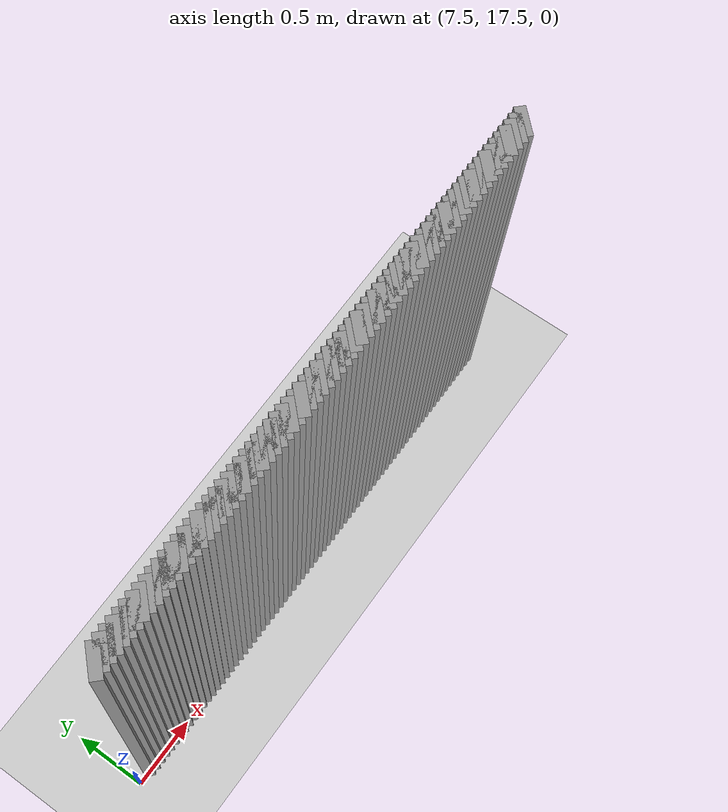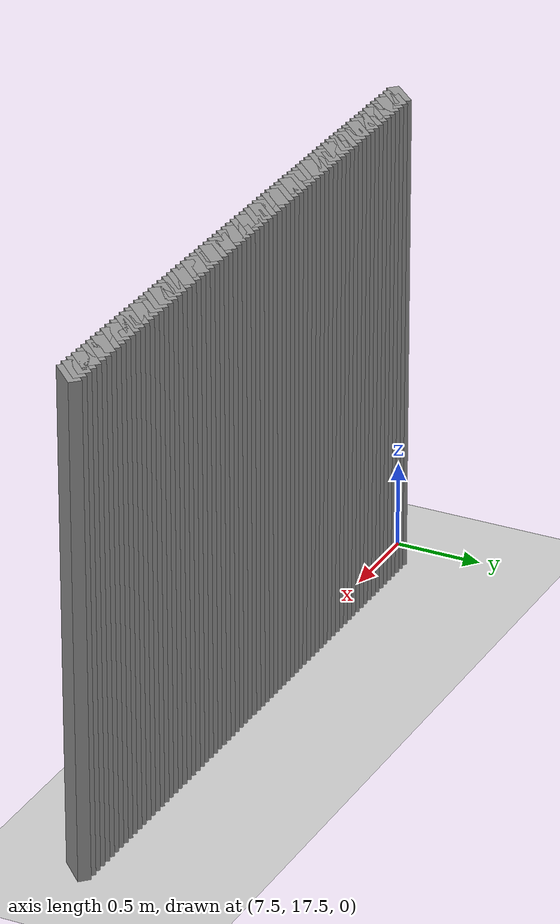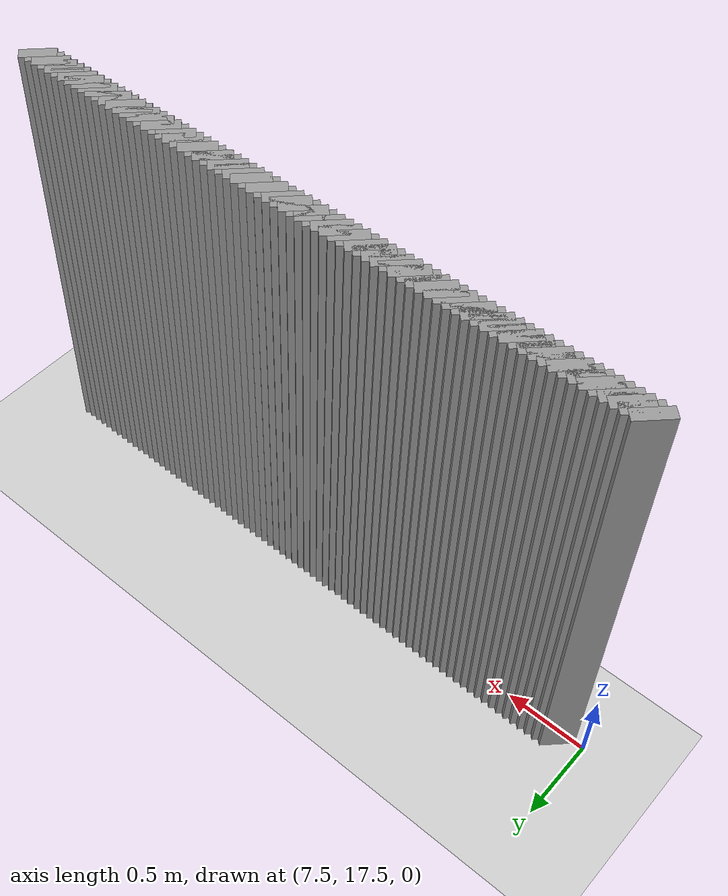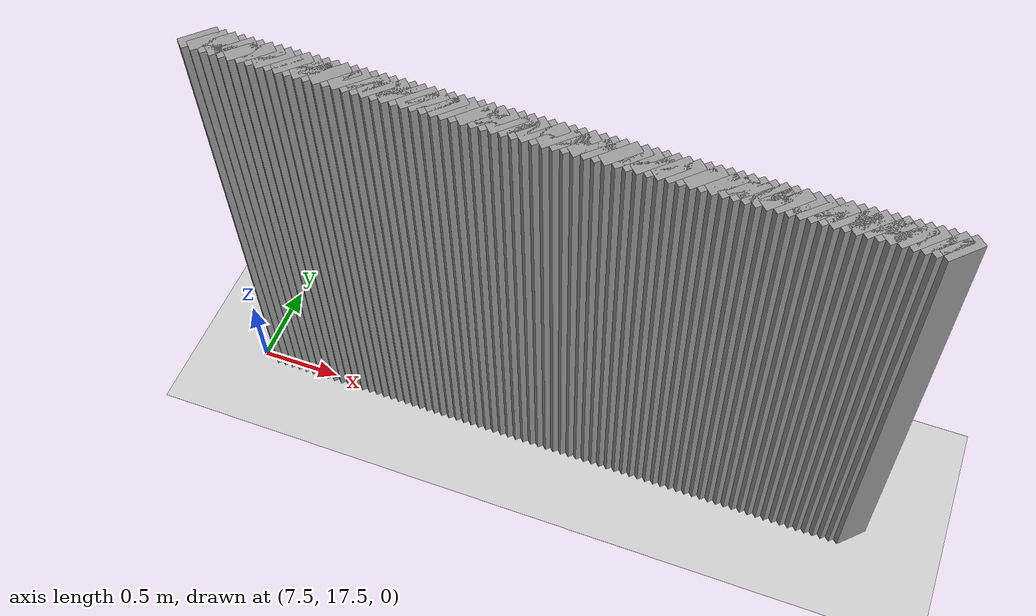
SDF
<sdf version="1.5">
 <world name="default">
  <include><uri>model://ground_plane</uri></include>
  <include><uri>model://sun</uri></include>
  <model name="grey_wall_75">
   <static>1</static>
   <link name="link">
    <pose>7.65 17.55  1.4 0 0 -0.7853981633974128</pose>
    <collision name="collision">
     <geometry><box><size>0.07071067811865325 .2  2.8</size></box></geometry>
    </collision>
    <visual name="visual">
     <cast_shadows>0</cast_shadows>
     <geometry><box><size>0.07071067811865325 .2  2.8</size></box></geometry>
     <material>
      <script>
       <uri>model://grey_wall/materials/scripts</uri>
       <uri>model://grey_wall/materials/textures</uri>
       <name>vrc/grey_wall</name>
      </script>
     </material>
    </visual>
   </link>
  </model>
  <model name="grey_wall_76">
   <static>1</static>
   <link name="link">
    <pose>7.7 17.55  1.4 0 0 -0.7853981633974128</pose>
    <collision name="collision">
     <geometry><box><size>0.07071067811865325 .2  2.8</size></box></geometry>
    </collision>
    <visual name="visual">
     <cast_shadows>0</cast_shadows>
     <geometry><box><size>0.07071067811865325 .2  2.8</size></box></geometry>
     <material>
      <script>
       <uri>model://grey_wall/materials/scripts</uri>
       <uri>model://grey_wall/materials/textures</uri>
       <name>vrc/grey_wall</name>
      </script>
     </material>
    </visual>
   </link>
  </model>
  <model name="grey_wall_77">
   <static>1</static>
   <link name="link">
    <pose>7.75 17.55  1.4 0 0 -0.7853981633974128</pose>
    <collision name="collision">
     <geometry><box><size>0.07071067811865325 .2  2.8</size></box></geometry>
    </collision>
    <visual name="visual">
     <cast_shadows>0</cast_shadows>
     <geometry><box><size>0.07071067811865325 .2  2.8</size></box></geometry>
     <material>
      <script>
       <uri>model://grey_wall/materials/scripts</uri>
       <uri>model://grey_wall/materials/textures</uri>
       <name>vrc/grey_wall</name>
      </script>
     </material>
    </visual>
   </link>
  </model>
  <model name="grey_wall_78">
   <static>1</static>
   <link name="link">
    <pose>7.800000000000001 17.55  1.4 0 0 -0.7853981633974128</pose>
    <collision name="collision">
     <geometry><box><size>0.07071067811865325 .2  2.8</size></box></geometry>
    </collision>
    <visual name="visual">
     <cast_shadows>0</cast_shadows>
     <geometry><box><size>0.07071067811865325 .2  2.8</size></box></geometry>
     <material>
      <script>
       <uri>model://grey_wall/materials/scripts</uri>
       <uri>model://grey_wall/materials/textures</uri>
       <name>vrc/grey_wall</name>
      </script>
     </material>
    </visual>
   </link>
  </model>
  <model name="grey_wall_79">
   <static>1</static>
   <link name="link">
    <pose>7.8500000000000005 17.55  1.4 0 0 -0.7853981633974128</pose>
    <collision name="collision">
     <geometry><box><size>0.07071067811865325 .2  2.8</size></box></geometry>
    </collision>
    <visual name="visual">
     <cast_shadows>0</cast_shadows>
     <geometry><box><size>0.07071067811865325 .2  2.8</size></box></geometry>
     <material>
      <script>
       <uri>model://grey_wall/materials/scripts</uri>
       <uri>model://grey_wall/materials/textures</uri>
       <name>vrc/grey_wall</name>
      </script>
     </material>
    </visual>
   </link>
  </model>
  <model name="grey_wall_80">
   <static>1</static>
   <link name="link">
    <pose>7.9 17.55  1.4 0 0 -0.7853981633974128</pose>
    <collision name="collision">
     <geometry><box><size>0.07071067811865325 .2  2.8</size></box></geometry>
    </collision>
    <visual name="visual">
     <cast_shadows>0</cast_shadows>
     <geometry><box><size>0.07071067811865325 .2  2.8</size></box></geometry>
     <material>
      <script>
       <uri>model://grey_wall/materials/scripts</uri>
       <uri>model://grey_wall/materials/textures</uri>
       <name>vrc/grey_wall</name>
      </script>
     </material>
    </visual>
   </link>
  </model>
  <model name="grey_wall_81">
   <static>1</static>
   <link name="link">
    <pose>7.95 17.55  1.4 0 0 -0.7853981633974128</pose>
    <collision name="collision">
     <geometry><box><size>0.07071067811865325 .2  2.8</size></box></geometry>
    </collision>
    <visual name="visual">
     <cast_shadows>0</cast_shadows>
     <geometry><box><size>0.07071067811865325 .2  2.8</size></box></geometry>
     <material>
      <script>
       <uri>model://grey_wall/materials/scripts</uri>
       <uri>model://grey_wall/materials/textures</uri>
       <name>vrc/grey_wall</name>
      </script>
     </material>
    </visual>
   </link>
  </model>
  <model name="grey_wall_82">
   <static>1</static>
   <link name="link">
    <pose>8.0 17.55  1.4 0 0 -0.7853981633974128</pose>
    <collision name="collision">
     <geometry><box><size>0.07071067811865325 .2  2.8</size></box></geometry>
    </collision>
    <visual name="visual">
     <cast_shadows>0</cast_shadows>
     <geometry><box><size>0.07071067811865325 .2  2.8</size></box></geometry>
     <material>
      <script>
       <uri>model://grey_wall/materials/scripts</uri>
       <uri>model://grey_wall/materials/textures</uri>
       <name>vrc/grey_wall</name>
      </script>
     </material>
    </visual>
   </link>
  </model>
  <model name="grey_wall_83">
   <static>1</static>
   <link name="link">
    <pose>8.05 17.55  1.4 0 0 -0.7853981633974128</pose>
    <collision name="collision">
     <geometry><box><size>0.07071067811865325 .2  2.8</size></box></geometry>
    </collision>
    <visual name="visual">
     <cast_shadows>0</cast_shadows>
     <geometry><box><size>0.07071067811865325 .2  2.8</size></box></geometry>
     <material>
      <script>
       <uri>model://grey_wall/materials/scripts</uri>
       <uri>model://grey_wall/materials/textures</uri>
       <name>vrc/grey_wall</name>
      </script>
     </material>
    </visual>
   </link>
  </model>
  <model name="grey_wall_84">
   <static>1</static>
   <link name="link">
    <pose>8.1 17.55  1.4 0 0 -0.7853981633974128</pose>
    <collision name="collision">
     <geometry><box><size>0.07071067811865325 .2  2.8</size></box></geometry>
    </collision>
    <visual name="visual">
     <cast_shadows>0</cast_shadows>
     <geometry><box><size>0.07071067811865325 .2  2.8</size></box></geometry>
     <material>
      <script>
       <uri>model://grey_wall/materials/scripts</uri>
       <uri>model://grey_wall/materials/textures</uri>
       <name>vrc/grey_wall</name>
      </script>
     </material>
    </visual>
   </link>
  </model>
  <model name="grey_wall_85">
   <static>1</static>
   <link name="link">
    <pose>8.15 17.55  1.4 0 0 -0.7853981633974128</pose>
    <collision name="collision">
     <geometry><box><size>0.07071067811865325 .2  2.8</size></box></geometry>
    </collision>
    <visual name="visual">
     <cast_shadows>0</cast_shadows>
     <geometry><box><size>0.07071067811865325 .2  2.8</size></box></geometry>
     <material>
      <script>
       <uri>model://grey_wall/materials/scripts</uri>
       <uri>model://grey_wall/materials/textures</uri>
       <name>vrc/grey_wall</name>
      </script>
     </material>
    </visual>
   </link>
  </model>
  <model name="grey_wall_86">
   <static>1</static>
   <link name="link">
    <pose>8.200000000000001 17.55  1.4 0 0 -0.7853981633974128</pose>
    <collision name="collision">
     <geometry><box><size>0.07071067811865325 .2  2.8</size></box></geometry>
    </collision>
    <visual name="visual">
     <cast_shadows>0</cast_shadows>
     <geometry><box><size>0.07071067811865325 .2  2.8</size></box></geometry>
     <material>
      <script>
       <uri>model://grey_wall/materials/scripts</uri>
       <uri>model://grey_wall/materials/textures</uri>
       <name>vrc/grey_wall</name>
      </script>
     </material>
    </visual>
   </link>
  </model>
  <model name="grey_wall_87">
   <static>1</static>
   <link name="link">
    <pose>8.25 17.55  1.4 0 0 -0.7853981633974128</pose>
    <collision name="collision">
     <geometry><box><size>0.07071067811865325 .2  2.8</size></box></geometry>
    </collision>
    <visual name="visual">
     <cast_shadows>0</cast_shadows>
     <geometry><box><size>0.07071067811865325 .2  2.8</size></box></geometry>
     <material>
      <script>
       <uri>model://grey_wall/materials/scripts</uri>
       <uri>model://grey_wall/materials/textures</uri>
       <name>vrc/grey_wall</name>
      </script>
     </material>
    </visual>
   </link>
  </model>
  <model name="grey_wall_88">
   <static>1</static>
   <link name="link">
    <pose>8.3 17.55  1.4 0 0 -0.7853981633974128</pose>
    <collision name="collision">
     <geometry><box><size>0.07071067811865325 .2  2.8</size></box></geometry>
    </collision>
    <visual name="visual">
     <cast_shadows>0</cast_shadows>
     <geometry><box><size>0.07071067811865325 .2  2.8</size></box></geometry>
     <material>
      <script>
       <uri>model://grey_wall/materials/scripts</uri>
       <uri>model://grey_wall/materials/textures</uri>
       <name>vrc/grey_wall</name>
      </script>
     </material>
    </visual>
   </link>
  </model>
  <model name="grey_wall_89">
   <static>1</static>
   <link name="link">
    <pose>8.35 17.55  1.4 0 0 -0.7853981633974128</pose>
    <collision name="collision">
     <geometry><box><size>0.07071067811865325 .2  2.8</size></box></geometry>
    </collision>
    <visual name="visual">
     <cast_shadows>0</cast_shadows>
     <geometry><box><size>0.07071067811865325 .2  2.8</size></box></geometry>
     <material>
      <script>
       <uri>model://grey_wall/materials/scripts</uri>
       <uri>model://grey_wall/materials/textures</uri>
       <name>vrc/grey_wall</name>
      </script>
     </material>
    </visual>
   </link>
  </model>
  <model name="grey_wall_90">
   <static>1</static>
   <link name="link">
    <pose>8.4 17.55  1.4 0 0 -0.7853981633974128</pose>
    <collision name="collision">
     <geometry><box><size>0.07071067811865325 .2  2.8</size></box></geometry>
    </collision>
    <visual name="visual">
     <cast_shadows>0</cast_shadows>
     <geometry><box><size>0.07071067811865325 .2  2.8</size></box></geometry>
     <material>
      <script>
       <uri>model://grey_wall/materials/scripts</uri>
       <uri>model://grey_wall/materials/textures</uri>
       <name>vrc/grey_wall</name>
      </script>
     </material>
    </visual>
   </link>
  </model>
  <model name="grey_wall_91">
   <static>1</static>
   <link name="link">
    <pose>8.450000000000001 17.55  1.4 0 0 -0.7853981633974128</pose>
    <collision name="collision">
     <geometry><box><size>0.07071067811865325 .2  2.8</size></box></geometry>
    </collision>
    <visual name="visual">
     <cast_shadows>0</cast_shadows>
     <geometry><box><size>0.07071067811865325 .2  2.8</size></box></geometry>
     <material>
      <script>
       <uri>model://grey_wall/materials/scripts</uri>
       <uri>model://grey_wall/materials/textures</uri>
       <name>vrc/grey_wall</name>
      </script>
     </material>
    </visual>
   </link>
  </model>
  <model name="grey_wall_92">
   <static>1</static>
   <link name="link">
    <pose>8.5 17.55  1.4 0 0 -0.7853981633974128</pose>
    <collision name="collision">
     <geometry><box><size>0.07071067811865325 .2  2.8</size></box></geometry>
    </collision>
    <visual name="visual">
     <cast_shadows>0</cast_shadows>
     <geometry><box><size>0.07071067811865325 .2  2.8</size></box></geometry>
     <material>
      <script>
       <uri>model://grey_wall/materials/scripts</uri>
       <uri>model://grey_wall/materials/textures</uri>
       <name>vrc/grey_wall</name>
      </script>
     </material>
    </visual>
   </link>
  </model>
  <model name="grey_wall_93">
   <static>1</static>
   <link name="link">
    <pose>8.55 17.55  1.4 0 0 -0.7853981633974128</pose>
    <collision name="collision">
     <geometry><box><size>0.07071067811865325 .2  2.8</size></box></geometry>
    </collision>
    <visual name="visual">
     <cast_shadows>0</cast_shadows>
     <geometry><box><size>0.07071067811865325 .2  2.8</size></box></geometry>
     <material>
      <script>
       <uri>model://grey_wall/materials/scripts</uri>
       <uri>model://grey_wall/materials/textures</uri>
       <name>vrc/grey_wall</name>
      </script>
     </material>
    </visual>
   </link>
  </model>
  <model name="grey_wall_94">
   <static>1</static>
   <link name="link">
    <pose>8.6 17.55  1.4 0 0 -0.7853981633974128</pose>
    <collision name="collision">
     <geometry><box><size>0.07071067811865325 .2  2.8</size></box></geometry>
    </collision>
    <visual name="visual">
     <cast_shadows>0</cast_shadows>
     <geometry><box><size>0.07071067811865325 .2  2.8</size></box></geometry>
     <material>
      <script>
       <uri>model://grey_wall/materials/scripts</uri>
       <uri>model://grey_wall/materials/textures</uri>
       <name>vrc/grey_wall</name>
      </script>
     </material>
    </visual>
   </link>
  </model>
  <model name="grey_wall_95">
   <static>1</static>
   <link name="link">
    <pose>8.65 17.55  1.4 0 0 -0.7853981633974128</pose>
    <collision name="collision">
     <geometry><box><size>0.07071067811865325 .2  2.8</size></box></geometry>
    </collision>
    <visual name="visual">
     <cast_shadows>0</cast_shadows>
     <geometry><box><size>0.07071067811865325 .2  2.8</size></box></geometry>
     <material>
      <script>
       <uri>model://grey_wall/materials/scripts</uri>
       <uri>model://grey_wall/materials/textures</uri>
       <name>vrc/grey_wall</name>
      </script>
     </material>
    </visual>
   </link>
  </model>
  <model name="grey_wall_96">
   <static>1</static>
   <link name="link">
    <pose>8.700000000000001 17.55  1.4 0 0 -0.7853981633974128</pose>
    <collision name="collision">
     <geometry><box><size>0.07071067811865325 .2  2.8</size></box></geometry>
    </collision>
    <visual name="visual">
     <cast_shadows>0</cast_shadows>
     <geometry><box><size>0.07071067811865325 .2  2.8</size></box></geometry>
     <material>
      <script>
       <uri>model://grey_wall/materials/scripts</uri>
       <uri>model://grey_wall/materials/textures</uri>
       <name>vrc/grey_wall</name>
      </script>
     </material>
    </visual>
   </link>
  </model>
  <model name="grey_wall_97">
   <static>1</static>
   <link name="link">
    <pose>8.75 17.55  1.4 0 0 -0.7853981633974128</pose>
    <collision name="collision">
     <geometry><box><size>0.07071067811865325 .2  2.8</size></box></geometry>
    </collision>
    <visual name="visual">
     <cast_shadows>0</cast_shadows>
     <geometry><box><size>0.07071067811865325 .2  2.8</size></box></geometry>
     <material>
      <script>
       <uri>model://grey_wall/materials/scripts</uri>
       <uri>model://grey_wall/materials/textures</uri>
       <name>vrc/grey_wall</name>
      </script>
     </material>
    </visual>
   </link>
  </model>
  <model name="grey_wall_98">
   <static>1</static>
   <link name="link">
    <pose>8.8 17.55  1.4 0 0 -0.7853981633974128</pose>
    <collision name="collision">
     <geometry><box><size>0.07071067811865325 .2  2.8</size></box></geometry>
    </collision>
    <visual name="visual">
     <cast_shadows>0</cast_shadows>
     <geometry><box><size>0.07071067811865325 .2  2.8</size></box></geometry>
     <material>
      <script>
       <uri>model://grey_wall/materials/scripts</uri>
       <uri>model://grey_wall/materials/textures</uri>
       <name>vrc/grey_wall</name>
      </script>
     </material>
    </visual>
   </link>
  </model>
  <model name="grey_wall_99">
   <static>1</static>
   <link name="link">
    <pose>8.85 17.55  1.4 0 0 -0.7853981633974128</pose>
    <collision name="collision">
     <geometry><box><size>0.07071067811865325 .2  2.8</size></box></geometry>
    </collision>
    <visual name="visual">
     <cast_shadows>0</cast_shadows>
     <geometry><box><size>0.07071067811865325 .2  2.8</size></box></geometry>
     <material>
      <script>
       <uri>model://grey_wall/materials/scripts</uri>
       <uri>model://grey_wall/materials/textures</uri>
       <name>vrc/grey_wall</name>
      </script>
     </material>
    </visual>
   </link>
  </model>
  <model name="grey_wall_100">
   <static>1</static>
   <link name="link">
    <pose>8.9 17.55  1.4 0 0 -0.7853981633974128</pose>
    <collision name="collision">
     <geometry><box><size>0.07071067811865325 .2  2.8</size></box></geometry>
    </collision>
    <visual name="visual">
     <cast_shadows>0</cast_shadows>
     <geometry><box><size>0.07071067811865325 .2  2.8</size></box></geometry>
     <material>
      <script>
       <uri>model://grey_wall/materials/scripts</uri>
       <uri>model://grey_wall/materials/textures</uri>
       <name>vrc/grey_wall</name>
      </script>
     </material>
    </visual>
   </link>
  </model>
  <model name="grey_wall_101">
   <static>1</static>
   <link name="link">
    <pose>8.950000000000001 17.55  1.4 0 0 -0.7853981633974128</pose>
    <collision name="collision">
     <geometry><box><size>0.07071067811865325 .2  2.8</size></box></geometry>
    </collision>
    <visual name="visual">
     <cast_shadows>0</cast_shadows>
     <geometry><box><size>0.07071067811865325 .2  2.8</size></box></geometry>
     <material>
      <script>
       <uri>model://grey_wall/materials/scripts</uri>
       <uri>model://grey_wall/materials/textures</uri>
       <name>vrc/grey_wall</name>
      </script>
     </material>
    </visual>
   </link>
  </model>
  <model name="grey_wall_102">
   <static>1</static>
   <link name="link">
    <pose>9.0 17.55  1.4 0 0 -0.7853981633974128</pose>
    <collision name="collision">
     <geometry><box><size>0.07071067811865325 .2  2.8</size></box></geometry>
    </collision>
    <visual name="visual">
     <cast_shadows>0</cast_shadows>
     <geometry><box><size>0.07071067811865325 .2  2.8</size></box></geometry>
     <material>
      <script>
       <uri>model://grey_wall/materials/scripts</uri>
       <uri>model://grey_wall/materials/textures</uri>
       <name>vrc/grey_wall</name>
      </script>
     </material>
    </visual>
   </link>
  </model>
  <model name="grey_wall_103">
   <static>1</static>
   <link name="link">
    <pose>9.05 17.55  1.4 0 0 -0.7853981633974128</pose>
    <collision name="collision">
     <geometry><box><size>0.07071067811865325 .2  2.8</size></box></geometry>
    </collision>
    <visual name="visual">
     <cast_shadows>0</cast_shadows>
     <geometry><box><size>0.07071067811865325 .2  2.8</size></box></geometry>
     <material>
      <script>
       <uri>model://grey_wall/materials/scripts</uri>
       <uri>model://grey_wall/materials/textures</uri>
       <name>vrc/grey_wall</name>
      </script>
     </material>
    </visual>
   </link>
  </model>
  <model name="grey_wall_104">
   <static>1</static>
   <link name="link">
    <pose>9.1 17.55  1.4 0 0 -0.7853981633974128</pose>
    <collision name="collision">
     <geometry><box><size>0.07071067811865325 .2  2.8</size></box></geometry>
    </collision>
    <visual name="visual">
     <cast_shadows>0</cast_shadows>
     <geometry><box><size>0.07071067811865325 .2  2.8</size></box></geometry>
     <material>
      <script>
       <uri>model://grey_wall/materials/scripts</uri>
       <uri>model://grey_wall/materials/textures</uri>
       <name>vrc/grey_wall</name>
      </script>
     </material>
    </visual>
   </link>
  </model>
  <model name="grey_wall_105">
   <static>1</static>
   <link name="link">
    <pose>9.15 17.55  1.4 0 0 -0.7853981633974128</pose>
    <collision name="collision">
     <geometry><box><size>0.07071067811865325 .2  2.8</size></box></geometry>
    </collision>
    <visual name="visual">
     <cast_shadows>0</cast_shadows>
     <geometry><box><size>0.07071067811865325 .2  2.8</size></box></geometry>
     <material>
      <script>
       <uri>model://grey_wall/materials/scripts</uri>
       <uri>model://grey_wall/materials/textures</uri>
       <name>vrc/grey_wall</name>
      </script>
     </material>
    </visual>
   </link>
  </model>
  <model name="grey_wall_106">
   <static>1</static>
   <link name="link">
    <pose>9.200000000000001 17.55  1.4 0 0 -0.7853981633974128</pose>
    <collision name="collision">
     <geometry><box><size>0.07071067811865325 .2  2.8</size></box></geometry>
    </collision>
    <visual name="visual">
     <cast_shadows>0</cast_shadows>
     <geometry><box><size>0.07071067811865325 .2  2.8</size></box></geometry>
     <material>
      <script>
       <uri>model://grey_wall/materials/scripts</uri>
       <uri>model://grey_wall/materials/textures</uri>
       <name>vrc/grey_wall</name>
      </script>
     </material>
    </visual>
   </link>
  </model>
  <model name="grey_wall_107">
   <static>1</static>
   <link name="link">
    <pose>9.25 17.55  1.4 0 0 -0.7853981633974128</pose>
    <collision name="collision">
     <geometry><box><size>0.07071067811865325 .2  2.8</size></box></geometry>
    </collision>
    <visual name="visual">
     <cast_shadows>0</cast_shadows>
     <geometry><box><size>0.07071067811865325 .2  2.8</size></box></geometry>
     <material>
      <script>
       <uri>model://grey_wall/materials/scripts</uri>
       <uri>model://grey_wall/materials/textures</uri>
       <name>vrc/grey_wall</name>
      </script>
     </material>
    </visual>
   </link>
  </model>
  <model name="grey_wall_108">
   <static>1</static>
   <link name="link">
    <pose>9.3 17.55  1.4 0 0 -0.7853981633974128</pose>
    <collision name="collision">
     <geometry><box><size>0.07071067811865325 .2  2.8</size></box></geometry>
    </collision>
    <visual name="visual">
     <cast_shadows>0</cast_shadows>
     <geometry><box><size>0.07071067811865325 .2  2.8</size></box></geometry>
     <material>
      <script>
       <uri>model://grey_wall/materials/scripts</uri>
       <uri>model://grey_wall/materials/textures</uri>
       <name>vrc/grey_wall</name>
      </script>
     </material>
    </visual>
   </link>
  </model>
  <model name="grey_wall_109">
   <static>1</static>
   <link name="link">
    <pose>9.35 17.55  1.4 0 0 -0.7853981633974128</pose>
    <collision name="collision">
     <geometry><box><size>0.07071067811865325 .2  2.8</size></box></geometry>
    </collision>
    <visual name="visual">
     <cast_shadows>0</cast_shadows>
     <geometry><box><size>0.07071067811865325 .2  2.8</size></box></geometry>
     <material>
      <script>
       <uri>model://grey_wall/materials/scripts</uri>
       <uri>model://grey_wall/materials/textures</uri>
       <name>vrc/grey_wall</name>
      </script>
     </material>
    </visual>
   </link>
  </model>
  <model name="grey_wall_110">
   <static>1</static>
   <link name="link">
    <pose>9.4 17.55  1.4 0 0 -0.7853981633974128</pose>
    <collision name="collision">
     <geometry><box><size>0.07071067811865325 .2  2.8</size></box></geometry>
    </collision>
    <visual name="visual">
     <cast_shadows>0</cast_shadows>
     <geometry><box><size>0.07071067811865325 .2  2.8</size></box></geometry>
     <material>
      <script>
       <uri>model://grey_wall/materials/scripts</uri>
       <uri>model://grey_wall/materials/textures</uri>
       <name>vrc/grey_wall</name>
      </script>
     </material>
    </visual>
   </link>
  </model>
  <model name="grey_wall_111">
   <static>1</static>
   <link name="link">
    <pose>9.450000000000001 17.55  1.4 0 0 -0.7853981633974128</pose>
    <collision name="collision">
     <geometry><box><size>0.07071067811865325 .2  2.8</size></box></geometry>
    </collision>
    <visual name="visual">
     <cast_shadows>0</cast_shadows>
     <geometry><box><size>0.07071067811865325 .2  2.8</size></box></geometry>
     <material>
      <script>
       <uri>model://grey_wall/materials/scripts</uri>
       <uri>model://grey_wall/materials/textures</uri>
       <name>vrc/grey_wall</name>
      </script>
     </material>
    </visual>
   </link>
  </model>
  <model name="grey_wall_112">
   <static>1</static>
   <link name="link">
    <pose>9.5 17.55  1.4 0 0 -0.7853981633974128</pose>
    <collision name="collision">
     <geometry><box><size>0.07071067811865325 .2  2.8</size></box></geometry>
    </collision>
    <visual name="visual">
     <cast_shadows>0</cast_shadows>
     <geometry><box><size>0.07071067811865325 .2  2.8</size></box></geometry>
     <material>
      <script>
       <uri>model://grey_wall/materials/scripts</uri>
       <uri>model://grey_wall/materials/textures</uri>
       <name>vrc/grey_wall</name>
      </script>
     </material>
    </visual>
   </link>
  </model>
  <model name="grey_wall_113">
   <static>1</static>
   <link name="link">
    <pose>9.55 17.55  1.4 0 0 -0.7853981633974128</pose>
    <collision name="collision">
     <geometry><box><size>0.07071067811865325 .2  2.8</size></box></geometry>
    </collision>
    <visual name="visual">
     <cast_shadows>0</cast_shadows>
     <geometry><box><size>0.07071067811865325 .2  2.8</size></box></geometry>
     <material>
      <script>
       <uri>model://grey_wall/materials/scripts</uri>
       <uri>model://grey_wall/materials/textures</uri>
       <name>vrc/grey_wall</name>
      </script>
     </material>
    </visual>
   </link>
  </model>
  <model name="grey_wall_114">
   <static>1</static>
   <link name="link">
    <pose>9.600000000000001 17.55  1.4 0 0 -0.7853981633974128</pose>
    <collision name="collision">
     <geometry><box><size>0.07071067811865325 .2  2.8</size></box></geometry>
    </collision>
    <visual name="visual">
     <cast_shadows>0</cast_shadows>
     <geometry><box><size>0.07071067811865325 .2  2.8</size></box></geometry>
     <material>
      <script>
       <uri>model://grey_wall/materials/scripts</uri>
       <uri>model://grey_wall/materials/textures</uri>
       <name>vrc/grey_wall</name>
      </script>
     </material>
    </visual>
   </link>
  </model>
  <model name="grey_wall_115">
   <static>1</static>
   <link name="link">
    <pose>9.65 17.55  1.4 0 0 -0.7853981633974128</pose>
    <collision name="collision">
     <geometry><box><size>0.07071067811865325 .2  2.8</size></box></geometry>
    </collision>
    <visual name="visual">
     <cast_shadows>0</cast_shadows>
     <geometry><box><size>0.07071067811865325 .2  2.8</size></box></geometry>
     <material>
      <script>
       <uri>model://grey_wall/materials/scripts</uri>
       <uri>model://grey_wall/materials/textures</uri>
       <name>vrc/grey_wall</name>
      </script>
     </material>
    </visual>
   </link>
  </model>
  <model name="grey_wall_116">
   <static>1</static>
   <link name="link">
    <pose>9.700000000000001 17.55  1.4 0 0 -0.7853981633974128</pose>
    <collision name="collision">
     <geometry><box><size>0.07071067811865325 .2  2.8</size></box></geometry>
    </collision>
    <visual name="visual">
     <cast_shadows>0</cast_shadows>
     <geometry><box><size>0.07071067811865325 .2  2.8</size></box></geometry>
     <material>
      <script>
       <uri>model://grey_wall/materials/scripts</uri>
       <uri>model://grey_wall/materials/textures</uri>
       <name>vrc/grey_wall</name>
      </script>
     </material>
    </visual>
   </link>
  </model>
  <model name="grey_wall_117">
   <static>1</static>
   <link name="link">
    <pose>9.75 17.55  1.4 0 0 -0.7853981633974128</pose>
    <collision name="collision">
     <geometry><box><size>0.07071067811865325 .2  2.8</size></box></geometry>
    </collision>
    <visual name="visual">
     <cast_shadows>0</cast_shadows>
     <geometry><box><size>0.07071067811865325 .2  2.8</size></box></geometry>
     <material>
      <script>
       <uri>model://grey_wall/materials/scripts</uri>
       <uri>model://grey_wall/materials/textures</uri>
       <name>vrc/grey_wall</name>
      </script>
     </material>
    </visual>
   </link>
  </model>
  <model name="grey_wall_118">
   <static>1</static>
   <link name="link">
    <pose>9.8 17.55  1.4 0 0 -0.7853981633974128</pose>
    <collision name="collision">
     <geometry><box><size>0.07071067811865325 .2  2.8</size></box></geometry>
    </collision>
    <visual name="visual">
     <cast_shadows>0</cast_shadows>
     <geometry><box><size>0.07071067811865325 .2  2.8</size></box></geometry>
     <material>
      <script>
       <uri>model://grey_wall/materials/scripts</uri>
       <uri>model://grey_wall/materials/textures</uri>
       <name>vrc/grey_wall</name>
      </script>
     </material>
    </visual>
   </link>
  </model>
  <model name="grey_wall_119">
   <static>1</static>
   <link name="link">
    <pose>9.850000000000001 17.55  1.4 0 0 -0.7853981633974128</pose>
    <collision name="collision">
     <geometry><box><size>0.07071067811865325 .2  2.8</size></box></geometry>
    </collision>
    <visual name="visual">
     <cast_shadows>0</cast_shadows>
     <geometry><box><size>0.07071067811865325 .2  2.8</size></box></geometry>
     <material>
      <script>
       <uri>model://grey_wall/materials/scripts</uri>
       <uri>model://grey_wall/materials/textures</uri>
       <name>vrc/grey_wall</name>
      </script>
     </material>
    </visual>
   </link>
  </model>
  <model name="grey_wall_120">
   <static>1</static>
   <link name="link">
    <pose>9.9 17.55  1.4 0 0 -0.7853981633974128</pose>
    <collision name="collision">
     <geometry><box><size>0.07071067811865325 .2  2.8</size></box></geometry>
    </collision>
    <visual name="visual">
     <cast_shadows>0</cast_shadows>
     <geometry><box><size>0.07071067811865325 .2  2.8</size></box></geometry>
     <material>
      <script>
       <uri>model://grey_wall/materials/scripts</uri>
       <uri>model://grey_wall/materials/textures</uri>
       <name>vrc/grey_wall</name>
      </script>
     </material>
    </visual>
   </link>
  </model>
  <model name="grey_wall_121">
   <static>1</static>
   <link name="link">
    <pose>9.950000000000001 17.55  1.4 0 0 -0.7853981633974128</pose>
    <collision name="collision">
     <geometry><box><size>0.07071067811865325 .2  2.8</size></box></geometry>
    </collision>
    <visual name="visual">
     <cast_shadows>0</cast_shadows>
     <geometry><box><size>0.07071067811865325 .2  2.8</size></box></geometry>
     <material>
      <script>
       <uri>model://grey_wall/materials/scripts</uri>
       <uri>model://grey_wall/materials/textures</uri>
       <name>vrc/grey_wall</name>
      </script>
     </material>
    </visual>
   </link>
  </model>
  <model name="grey_wall_122">
   <static>1</static>
   <link name="link">
    <pose>10.0 17.55  1.4 0 0 -0.7853981633974128</pose>
    <collision name="collision">
     <geometry><box><size>0.07071067811865325 .2  2.8</size></box></geometry>
    </collision>
    <visual name="visual">
     <cast_shadows>0</cast_shadows>
     <geometry><box><size>0.07071067811865325 .2  2.8</size></box></geometry>
     <material>
      <script>
       <uri>model://grey_wall/materials/scripts</uri>
       <uri>model://grey_wall/materials/textures</uri>
       <name>vrc/grey_wall</name>
      </script>
     </material>
    </visual>
   </link>
  </model>
  <model name="grey_wall_123">
   <static>1</static>
   <link name="link">
    <pose>10.05 17.55  1.4 0 0 -0.7853981633974128</pose>
    <collision name="collision">
     <geometry><box><size>0.07071067811865325 .2  2.8</size></box></geometry>
    </collision>
    <visual name="visual">
     <cast_shadows>0</cast_shadows>
     <geometry><box><size>0.07071067811865325 .2  2.8</size></box></geometry>
     <material>
      <script>
       <uri>model://grey_wall/materials/scripts</uri>
       <uri>model://grey_wall/materials/textures</uri>
       <name>vrc/grey_wall</name>
      </script>
     </material>
    </visual>
   </link>
  </model>
  <model name="grey_wall_124">
   <static>1</static>
   <link name="link">
    <pose>10.100000000000001 17.55  1.4 0 0 -0.7853981633974128</pose>
    <collision name="collision">
     <geometry><box><size>0.07071067811865325 .2  2.8</size></box></geometry>
    </collision>
    <visual name="visual">
     <cast_shadows>0</cast_shadows>
     <geometry><box><size>0.07071067811865325 .2  2.8</size></box></geometry>
     <material>
      <script>
       <uri>model://grey_wall/materials/scripts</uri>
       <uri>model://grey_wall/materials/textures</uri>
       <name>vrc/grey_wall</name>
      </script>
     </material>
    </visual>
   </link>
  </model>
  <model name="grey_wall_125">
   <static>1</static>
   <link name="link">
    <pose>10.15 17.55  1.4 0 0 -0.7853981633974128</pose>
    <collision name="collision">
     <geometry><box><size>0.07071067811865325 .2  2.8</size></box></geometry>
    </collision>
    <visual name="visual">
     <cast_shadows>0</cast_shadows>
     <geometry><box><size>0.07071067811865325 .2  2.8</size></box></geometry>
     <material>
      <script>
       <uri>model://grey_wall/materials/scripts</uri>
       <uri>model://grey_wall/materials/textures</uri>
       <name>vrc/grey_wall</name>
      </script>
     </material>
    </visual>
   </link>
  </model>
  <model name="grey_wall_126">
   <static>1</static>
   <link name="link">
    <pose>10.200000000000001 17.55  1.4 0 0 -0.7853981633974128</pose>
    <collision name="collision">
     <geometry><box><size>0.07071067811865325 .2  2.8</size></box></geometry>
    </collision>
    <visual name="visual">
     <cast_shadows>0</cast_shadows>
     <geometry><box><size>0.07071067811865325 .2  2.8</size></box></geometry>
     <material>
      <script>
       <uri>model://grey_wall/materials/scripts</uri>
       <uri>model://grey_wall/materials/textures</uri>
       <name>vrc/grey_wall</name>
      </script>
     </material>
    </visual>
   </link>
  </model>
  <model name="grey_wall_127">
   <static>1</static>
   <link name="link">
    <pose>10.25 17.55  1.4 0 0 -0.7853981633974128</pose>
    <collision name="collision">
     <geometry><box><size>0.07071067811865325 .2  2.8</size></box></geometry>
    </collision>
    <visual name="visual">
     <cast_shadows>0</cast_shadows>
     <geometry><box><size>0.07071067811865325 .2  2.8</size></box></geometry>
     <material>
      <script>
       <uri>model://grey_wall/materials/scripts</uri>
       <uri>model://grey_wall/materials/textures</uri>
       <name>vrc/grey_wall</name>
      </script>
     </material>
    </visual>
   </link>
  </model>
  <model name="grey_wall_128">
   <static>1</static>
   <link name="link">
    <pose>10.3 17.55  1.4 0 0 -0.7853981633974128</pose>
    <collision name="collision">
     <geometry><box><size>0.07071067811865325 .2  2.8</size></box></geometry>
    </collision>
    <visual name="visual">
     <cast_shadows>0</cast_shadows>
     <geometry><box><size>0.07071067811865325 .2  2.8</size></box></geometry>
     <material>
      <script>
       <uri>model://grey_wall/materials/scripts</uri>
       <uri>model://grey_wall/materials/textures</uri>
       <name>vrc/grey_wall</name>
      </script>
     </material>
    </visual>
   </link>
  </model>
  <model name="grey_wall_129">
   <static>1</static>
   <link name="link">
    <pose>10.350000000000001 17.55  1.4 0 0 -0.7853981633974128</pose>
    <collision name="collision">
     <geometry><box><size>0.07071067811865325 .2  2.8</size></box></geometry>
    </collision>
    <visual name="visual">
     <cast_shadows>0</cast_shadows>
     <geometry><box><size>0.07071067811865325 .2  2.8</size></box></geometry>
     <material>
      <script>
       <uri>model://grey_wall/materials/scripts</uri>
       <uri>model://grey_wall/materials/textures</uri>
       <name>vrc/grey_wall</name>
      </script>
     </material>
    </visual>
   </link>
  </model>
  <model name="grey_wall_130">
   <static>1</static>
   <link name="link">
    <pose>10.4 17.55  1.4 0 0 -0.7853981633974128</pose>
    <collision name="collision">
     <geometry><box><size>0.07071067811865325 .2  2.8</size></box></geometry>
    </collision>
    <visual name="visual">
     <cast_shadows>0</cast_shadows>
     <geometry><box><size>0.07071067811865325 .2  2.8</size></box></geometry>
     <material>
      <script>
       <uri>model://grey_wall/materials/scripts</uri>
       <uri>model://grey_wall/materials/textures</uri>
       <name>vrc/grey_wall</name>
      </script>
     </material>
    </visual>
   </link>
  </model>
  <model name="grey_wall_131">
   <static>1</static>
   <link name="link">
    <pose>10.450000000000001 17.55  1.4 0 0 -0.7853981633974128</pose>
    <collision name="collision">
     <geometry><box><size>0.07071067811865325 .2  2.8</size></box></geometry>
    </collision>
    <visual name="visual">
     <cast_shadows>0</cast_shadows>
     <geometry><box><size>0.07071067811865325 .2  2.8</size></box></geometry>
     <material>
      <script>
       <uri>model://grey_wall/materials/scripts</uri>
       <uri>model://grey_wall/materials/textures</uri>
       <name>vrc/grey_wall</name>
      </script>
     </material>
    </visual>
   </link>
  </model>
  <model name="grey_wall_132">
   <static>1</static>
   <link name="link">
    <pose>10.5 17.55  1.4 0 0 -0.7853981633974128</pose>
    <collision name="collision">
     <geometry><box><size>0.07071067811865325 .2  2.8</size></box></geometry>
    </collision>
    <visual name="visual">
     <cast_shadows>0</cast_shadows>
     <geometry><box><size>0.07071067811865325 .2  2.8</size></box></geometry>
     <material>
      <script>
       <uri>model://grey_wall/materials/scripts</uri>
       <uri>model://grey_wall/materials/textures</uri>
       <name>vrc/grey_wall</name>
      </script>
     </material>
    </visual>
   </link>
  </model>
  <model name="grey_wall_133">
   <static>1</static>
   <link name="link">
    <pose>10.55 17.55  1.4 0 0 -0.7853981633974128</pose>
    <collision name="collision">
     <geometry><box><size>0.07071067811865325 .2  2.8</size></box></geometry>
    </collision>
    <visual name="visual">
     <cast_shadows>0</cast_shadows>
     <geometry><box><size>0.07071067811865325 .2  2.8</size></box></geometry>
     <material>
      <script>
       <uri>model://grey_wall/materials/scripts</uri>
       <uri>model://grey_wall/materials/textures</uri>
       <name>vrc/grey_wall</name>
      </script>
     </material>
    </visual>
   </link>
  </model>
  <model name="grey_wall_134">
   <static>1</static>
   <link name="link">
    <pose>10.600000000000001 17.55  1.4 0 0 -0.7853981633974128</pose>
    <collision name="collision">
     <geometry><box><size>0.07071067811865325 .2  2.8</size></box></geometry>
    </collision>
    <visual name="visual">
     <cast_shadows>0</cast_shadows>
     <geometry><box><size>0.07071067811865325 .2  2.8</size></box></geometry>
     <material>
      <script>
       <uri>model://grey_wall/materials/scripts</uri>
       <uri>model://grey_wall/materials/textures</uri>
       <name>vrc/grey_wall</name>
      </script>
     </material>
    </visual>
   </link>
  </model>
  <model name="grey_wall_135">
   <static>1</static>
   <link name="link">
    <pose>10.65 17.55  1.4 0 0 -0.7853981633974128</pose>
    <collision name="collision">
     <geometry><box><size>0.07071067811865325 .2  2.8</size></box></geometry>
    </collision>
    <visual name="visual">
     <cast_shadows>0</cast_shadows>
     <geometry><box><size>0.07071067811865325 .2  2.8</size></box></geometry>
     <material>
      <script>
       <uri>model://grey_wall/materials/scripts</uri>
       <uri>model://grey_wall/materials/textures</uri>
       <name>vrc/grey_wall</name>
      </script>
     </material>
    </visual>
   </link>
  </model>
  <model name="grey_wall_136">
   <static>1</static>
   <link name="link">
    <pose>10.700000000000001 17.55  1.4 0 0 -0.7853981633974128</pose>
    <collision name="collision">
     <geometry><box><size>0.07071067811865325 .2  2.8</size></box></geometry>
    </collision>
    <visual name="visual">
     <cast_shadows>0</cast_shadows>
     <geometry><box><size>0.07071067811865325 .2  2.8</size></box></geometry>
     <material>
      <script>
       <uri>model://grey_wall/materials/scripts</uri>
       <uri>model://grey_wall/materials/textures</uri>
       <name>vrc/grey_wall</name>
      </script>
     </material>
    </visual>
   </link>
  </model>
  <model name="grey_wall_137">
   <static>1</static>
   <link name="link">
    <pose>10.75 17.55  1.4 0 0 -0.7853981633974128</pose>
    <collision name="collision">
     <geometry><box><size>0.07071067811865325 .2  2.8</size></box></geometry>
    </collision>
    <visual name="visual">
     <cast_shadows>0</cast_shadows>
     <geometry><box><size>0.07071067811865325 .2  2.8</size></box></geometry>
     <material>
      <script>
       <uri>model://grey_wall/materials/scripts</uri>
       <uri>model://grey_wall/materials/textures</uri>
       <name>vrc/grey_wall</name>
      </script>
     </material>
    </visual>
   </link>
  </model>
  <model name="grey_wall_138">
   <static>1</static>
   <link name="link">
    <pose>10.8 17.55  1.4 0 0 -0.7853981633974128</pose>
    <collision name="collision">
     <geometry><box><size>0.07071067811865325 .2  2.8</size></box></geometry>
    </collision>
    <visual name="visual">
     <cast_shadows>0</cast_shadows>
     <geometry><box><size>0.07071067811865325 .2  2.8</size></box></geometry>
     <material>
      <script>
       <uri>model://grey_wall/materials/scripts</uri>
       <uri>model://grey_wall/materials/textures</uri>
       <name>vrc/grey_wall</name>
      </script>
     </material>
    </visual>
   </link>
  </model>
  <model name="grey_wall_139">
   <static>1</static>
   <link name="link">
    <pose>10.850000000000001 17.55  1.4 0 0 -0.7853981633974128</pose>
    <collision name="collision">
     <geometry><box><size>0.07071067811865325 .2  2.8</size></box></geometry>
    </collision>
    <visual name="visual">
     <cast_shadows>0</cast_shadows>
     <geometry><box><size>0.07071067811865325 .2  2.8</size></box></geometry>
     <material>
      <script>
       <uri>model://grey_wall/materials/scripts</uri>
       <uri>model://grey_wall/materials/textures</uri>
       <name>vrc/grey_wall</name>
      </script>
     </material>
    </visual>
   </link>
  </model>
  <model name="grey_wall_140">
   <static>1</static>
   <link name="link">
    <pose>10.9 17.55  1.4 0 0 -0.7853981633974128</pose>
    <collision name="collision">
     <geometry><box><size>0.07071067811865325 .2  2.8</size></box></geometry>
    </collision>
    <visual name="visual">
     <cast_shadows>0</cast_shadows>
     <geometry><box><size>0.07071067811865325 .2  2.8</size></box></geometry>
     <material>
      <script>
       <uri>model://grey_wall/materials/scripts</uri>
       <uri>model://grey_wall/materials/textures</uri>
       <name>vrc/grey_wall</name>
      </script>
     </material>
    </visual>
   </link>
  </model>
  <model name="grey_wall_141">
   <static>1</static>
   <link name="link">
    <pose>10.950000000000001 17.55  1.4 0 0 -0.7853981633974128</pose>
    <collision name="collision">
     <geometry><box><size>0.07071067811865325 .2  2.8</size></box></geometry>
    </collision>
    <visual name="visual">
     <cast_shadows>0</cast_shadows>
     <geometry><box><size>0.07071067811865325 .2  2.8</size></box></geometry>
     <material>
      <script>
       <uri>model://grey_wall/materials/scripts</uri>
       <uri>model://grey_wall/materials/textures</uri>
       <name>vrc/grey_wall</name>
      </script>
     </material>
    </visual>
   </link>
  </model>
  <model name="grey_wall_142">
   <static>1</static>
   <link name="link">
    <pose>11.0 17.55  1.4 0 0 -0.7853981633974128</pose>
    <collision name="collision">
     <geometry><box><size>0.07071067811865325 .2  2.8</size></box></geometry>
    </collision>
    <visual name="visual">
     <cast_shadows>0</cast_shadows>
     <geometry><box><size>0.07071067811865325 .2  2.8</size></box></geometry>
     <material>
      <script>
       <uri>model://grey_wall/materials/scripts</uri>
       <uri>model://grey_wall/materials/textures</uri>
       <name>vrc/grey_wall</name>
      </script>
     </material>
    </visual>
   </link>
  </model>
  <model name="grey_wall_143">
   <static>1</static>
   <link name="link">
    <pose>11.05 17.55  1.4 0 0 -0.7853981633974128</pose>
    <collision name="collision">
     <geometry><box><size>0.07071067811865325 .2  2.8</size></box></geometry>
    </collision>
    <visual name="visual">
     <cast_shadows>0</cast_shadows>
     <geometry><box><size>0.07071067811865325 .2  2.8</size></box></geometry>
     <material>
      <script>
       <uri>model://grey_wall/materials/scripts</uri>
       <uri>model://grey_wall/materials/textures</uri>
       <name>vrc/grey_wall</name>
      </script>
     </material>
    </visual>
   </link>
  </model>
  <model name="grey_wall_144">
   <static>1</static>
   <link name="link">
    <pose>11.100000000000001 17.55  1.4 0 0 -0.7853981633974128</pose>
    <collision name="collision">
     <geometry><box><size>0.07071067811865325 .2  2.8</size></box></geometry>
    </collision>
    <visual name="visual">
     <cast_shadows>0</cast_shadows>
     <geometry><box><size>0.07071067811865325 .2  2.8</size></box></geometry>
     <material>
      <script>
       <uri>model://grey_wall/materials/scripts</uri>
       <uri>model://grey_wall/materials/textures</uri>
       <name>vrc/grey_wall</name>
      </script>
     </material>
    </visual>
   </link>
  </model>
  <model name="grey_wall_145">
   <static>1</static>
   <link name="link">
    <pose>11.15 17.55  1.4 0 0 -0.7853981633974128</pose>
    <collision name="collision">
     <geometry><box><size>0.07071067811865325 .2  2.8</size></box></geometry>
    </collision>
    <visual name="visual">
     <cast_shadows>0</cast_shadows>
     <geometry><box><size>0.07071067811865325 .2  2.8</size></box></geometry>
     <material>
      <script>
       <uri>model://grey_wall/materials/scripts</uri>
       <uri>model://grey_wall/materials/textures</uri>
       <name>vrc/grey_wall</name>
      </script>
     </material>
    </visual>
   </link>
  </model>
  <model name="grey_wall_146">
   <static>1</static>
   <link name="link">
    <pose>11.200000000000001 17.55  1.4 0 0 -0.7853981633974128</pose>
    <collision name="collision">
     <geometry><box><size>0.07071067811865325 .2  2.8</size></box></geometry>
    </collision>
    <visual name="visual">
     <cast_shadows>0</cast_shadows>
     <geometry><box><size>0.07071067811865325 .2  2.8</size></box></geometry>
     <material>
      <script>
       <uri>model://grey_wall/materials/scripts</uri>
       <uri>model://grey_wall/materials/textures</uri>
       <name>vrc/grey_wall</name>
      </script>
     </material>
    </visual>
   </link>
  </model>
  <model name="grey_wall_147">
   <static>1</static>
   <link name="link">
    <pose>11.25 17.55  1.4 0 0 -0.7853981633974128</pose>
    <collision name="collision">
     <geometry><box><size>0.07071067811865325 .2  2.8</size></box></geometry>
    </collision>
    <visual name="visual">
     <cast_shadows>0</cast_shadows>
     <geometry><box><size>0.07071067811865325 .2  2.8</size></box></geometry>
     <material>
      <script>
       <uri>model://grey_wall/materials/scripts</uri>
       <uri>model://grey_wall/materials/textures</uri>
       <name>vrc/grey_wall</name>
      </script>
     </material>
    </visual>
   </link>
  </model>
  <model name="grey_wall_148">
   <static>1</static>
   <link name="link">
    <pose>11.3 17.55  1.4 0 0 -0.7853981633974128</pose>
    <collision name="collision">
     <geometry><box><size>0.07071067811865325 .2  2.8</size></box></geometry>
    </collision>
    <visual name="visual">
     <cast_shadows>0</cast_shadows>
     <geometry><box><size>0.07071067811865325 .2  2.8</size></box></geometry>
     <material>
      <script>
       <uri>model://grey_wall/materials/scripts</uri>
       <uri>model://grey_wall/materials/textures</uri>
       <name>vrc/grey_wall</name>
      </script>
     </material>
    </visual>
   </link>
  </model>
  <model name="grey_wall_149">
   <static>1</static>
   <link name="link">
    <pose>11.350000000000001 17.55  1.4 0 0 -0.7853981633974128</pose>
    <collision name="collision">
     <geometry><box><size>0.07071067811865325 .2  2.8</size></box></geometry>
    </collision>
    <visual name="visual">
     <cast_shadows>0</cast_shadows>
     <geometry><box><size>0.07071067811865325 .2  2.8</size></box></geometry>
     <material>
      <script>
       <uri>model://grey_wall/materials/scripts</uri>
       <uri>model://grey_wall/materials/textures</uri>
       <name>vrc/grey_wall</name>
      </script>
     </material>
    </visual>
   </link>
  </model>
 </world>
</sdf>
